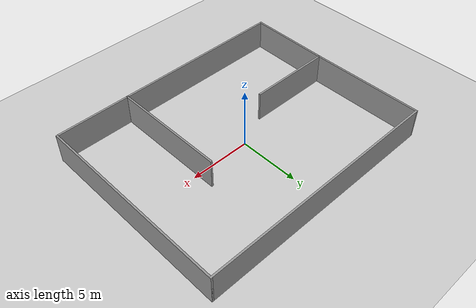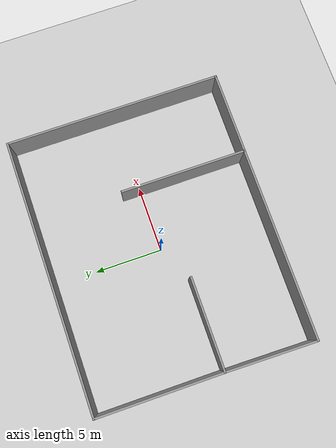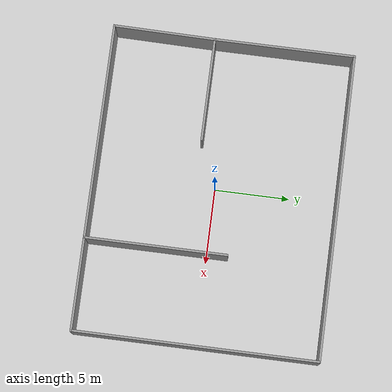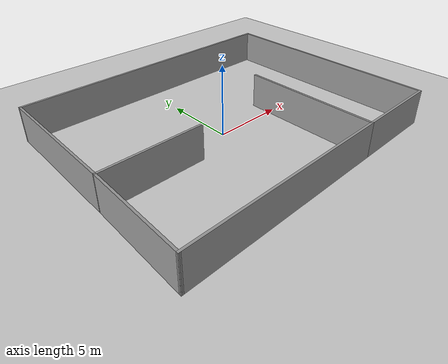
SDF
<sdf version="1.7">
 <world name="default">
  <light name="sun" type="directional">
   <pose>0 0 10 0 -0 0</pose>
   <diffuse>0.8 0.8 0.8 1</diffuse>
   <specular>0.2 0.2 0.2 1</specular>
   <attenuation>
    <range>1000</range>
    <constant>0.9</constant>
    <linear>0.01</linear>
    <quadratic>0.001</quadratic>
   </attenuation>
   <direction>-0.5 0.1 -0.9</direction>
   <spot><inner_angle>0</inner_angle><outer_angle>0</outer_angle><falloff>0</falloff></spot>
  </light>
  <model name="ground_plane">
   <static>1</static>
   <link name="link">
    <collision name="collision">
     <geometry><plane><normal>0 0 1</normal><size>100 100</size></plane></geometry>
     <surface>
      <contact><collide_bitmask>65535</collide_bitmask></contact>
      <friction><ode><mu>100</mu><mu2>50</mu2></ode></friction>
     </surface>
    </collision>
    <visual name="visual">
     <cast_shadows>0</cast_shadows>
     <geometry><plane><normal>0 0 1</normal><size>100 100</size></plane></geometry>
     <material>
      <script><uri>file://media/materials/scripts/gazebo.material</uri><name>Gazebo/Grey</name></script>
     </material>
    </visual>
   </link>
  </model>
  <gravity>0 0 -9.8</gravity>
  <magnetic_field>6e-06 2.3e-05 -4.2e-05</magnetic_field>
  <atmosphere type="adiabatic"/>
  <physics type="ode">
   <max_step_size>0.001</max_step_size>
   <real_time_factor>1</real_time_factor>
   <real_time_update_rate>1000</real_time_update_rate>
  </physics>
  <scene><ambient>0.4 0.4 0.4 1</ambient><background>0.7 0.7 0.7 1</background><shadows>1</shadows></scene>
  <spherical_coordinates>
   <surface_model>EARTH_WGS84</surface_model>
   <latitude_deg>0</latitude_deg>
   <longitude_deg>0</longitude_deg>
   <elevation>0</elevation>
   <heading_deg>0</heading_deg>
  </spherical_coordinates>
  <model name="Untitled">
   <pose>0.434449 0.069449 0 0 -0 0</pose>
   <link name="Wall_0">
    <collision name="Wall_0_Collision">
     <geometry><box><size>7 0.15 2.5</size></box></geometry>
     <pose>0 0 1.25 0 -0 0</pose>
    </collision>
    <visual name="Wall_0_Visual">
     <pose>0 0 1.25 0 -0 0</pose>
     <geometry><box><size>7 0.15 2.5</size></box></geometry>
     <material>
      <script><uri>file://media/materials/scripts/gazebo.material</uri><name>Gazebo/Grey</name></script>
      <ambient>1 1 1 1</ambient>
     </material>
     <meta><layer>0</layer></meta>
    </visual>
    <pose>-6.69945 -1.29945 0 0 -0 3.14159</pose>
   </link>
   <link name="Wall_1">
    <collision name="Wall_1_Collision">
     <geometry><box><size>9.5 0.15 2.5</size></box></geometry>
     <pose>0 0 1.25 0 -0 0</pose>
    </collision>
    <visual name="Wall_1_Visual">
     <pose>0 0 1.25 0 -0 0</pose>
     <geometry><box><size>9.5 0.15 2.5</size></box></geometry>
     <material>
      <script><uri>file://media/materials/scripts/gazebo.material</uri><name>Gazebo/Grey</name></script>
      <ambient>1 1 1 1</ambient>
     </material>
     <meta><layer>0</layer></meta>
    </visual>
    <pose>-10.1244 3.37555 0 0 -0 1.5708</pose>
   </link>
   <link name="Wall_2">
    <collision name="Wall_2_Collision">
     <geometry><box><size>20.5 0.15 2.5</size></box></geometry>
     <pose>0 0 1.25 0 -0 0</pose>
    </collision>
    <visual name="Wall_2_Visual">
     <pose>0 0 1.25 0 -0 0</pose>
     <geometry><box><size>20.5 0.15 2.5</size></box></geometry>
     <material>
      <script><uri>file://media/materials/scripts/gazebo.material</uri><name>Gazebo/Grey</name></script>
      <ambient>1 1 1 1</ambient>
     </material>
     <meta><layer>0</layer></meta>
    </visual>
    <pose>0.050551 8.05055 0 0 -0 0</pose>
   </link>
   <link name="Wall_3">
    <collision name="Wall_3_Collision">
     <geometry><box><size>16.25 0.15 2.5</size></box></geometry>
     <pose>0 0 1.25 0 -0 0</pose>
    </collision>
    <visual name="Wall_3_Visual">
     <pose>0 0 1.25 0 -0 0</pose>
     <geometry><box><size>16.25 0.15 2.5</size></box></geometry>
     <material>
      <script><uri>file://media/materials/scripts/gazebo.material</uri><name>Gazebo/Grey</name></script>
      <ambient>1 1 1 1</ambient>
     </material>
     <meta><layer>0</layer></meta>
    </visual>
    <pose>10.2256 0.000551 0 0 -0 -1.5708</pose>
   </link>
   <link name="Wall_4">
    <collision name="Wall_4_Collision">
     <geometry><box><size>6.25 0.15 2.5</size></box></geometry>
     <pose>0 0 1.25 0 -0 0</pose>
    </collision>
    <visual name="Wall_4_Visual">
     <pose>0 0 1.25 0 -0 0</pose>
     <geometry><box><size>6.25 0.15 2.5</size></box></geometry>
     <material>
      <script><uri>file://media/materials/scripts/gazebo.material</uri><name>Gazebo/Grey</name></script>
      <ambient>1 1 1 1</ambient>
     </material>
     <meta><layer>0</layer></meta>
    </visual>
    <pose>7.17555 -8.04945 0 0 -0 3.14159</pose>
   </link>
   <link name="Wall_5">
    <collision name="Wall_5_Collision">
     <geometry><box><size>9.5 0.15 2.5</size></box></geometry>
     <pose>0 0 1.25 0 -0 0</pose>
    </collision>
    <visual name="Wall_5_Visual">
     <pose>0 0 1.25 0 -0 0</pose>
     <geometry><box><size>9.5 0.15 2.5</size></box></geometry>
     <material>
      <script><uri>file://media/materials/scripts/gazebo.material</uri><name>Gazebo/Grey</name></script>
      <ambient>1 1 1 1</ambient>
     </material>
     <meta><layer>0</layer></meta>
    </visual>
    <pose>4.12555 -3.37445 0 0 -0 1.5708</pose>
   </link>
   <link name="Wall_7">
    <collision name="Wall_7_Collision">
     <geometry><box><size>14.5 0.15 2.5</size></box></geometry>
     <pose>0 0 1.25 0 -0 0</pose>
    </collision>
    <visual name="Wall_7_Visual">
     <pose>0 0 1.25 0 -0 0</pose>
     <geometry><box><size>14.5 0.15 2.5</size></box></geometry>
     <material>
      <script><uri>file://media/materials/scripts/gazebo.material</uri><name>Gazebo/Grey</name></script>
      <ambient>1 1 1 1</ambient>
     </material>
     <meta><layer>0</layer></meta>
    </visual>
    <pose>-3.04945 -8.04945 0 0 -0 3.14159</pose>
   </link>
   <link name="Wall_8">
    <collision name="Wall_8_Collision">
     <geometry><box><size>6.90074 0.15 2.5</size></box></geometry>
     <pose>0 0 1.25 0 -0 0</pose>
    </collision>
    <visual name="Wall_8_Visual">
     <pose>0 0 1.25 0 -0 0</pose>
     <geometry><box><size>6.90074 0.15 2.5</size></box></geometry>
     <material>
      <script><uri>file://media/materials/scripts/gazebo.material</uri><name>Gazebo/Grey</name></script>
      <ambient>1 1 1 1</ambient>
     </material>
     <meta><layer>0</layer></meta>
    </visual>
    <pose>-10.1744 -4.67445 0 0 -0 1.55598</pose>
   </link>
   <static>1</static>
  </model>
 </world>
</sdf>
